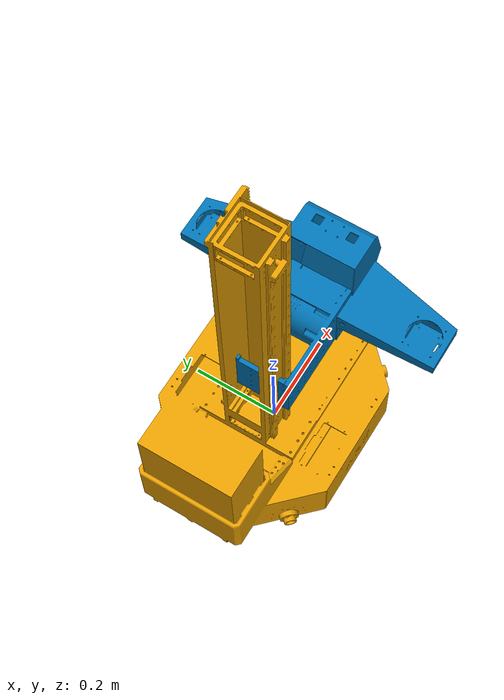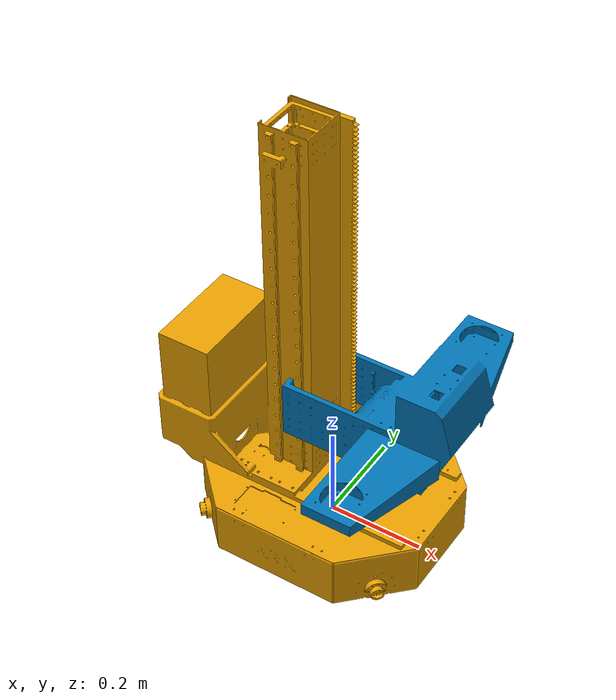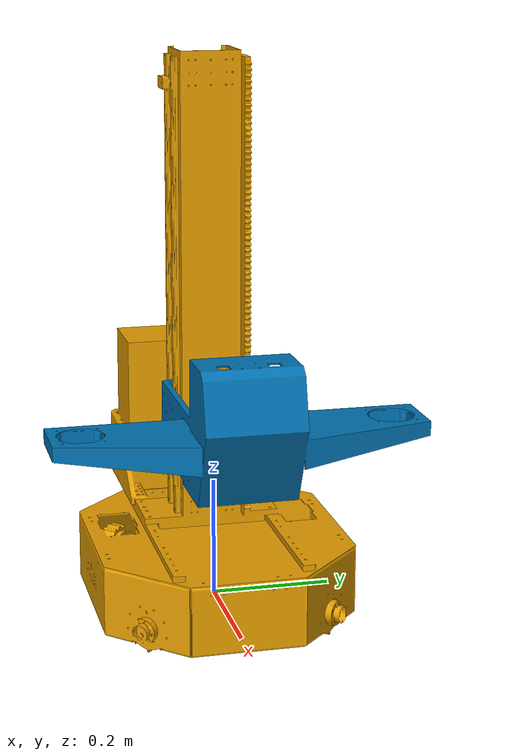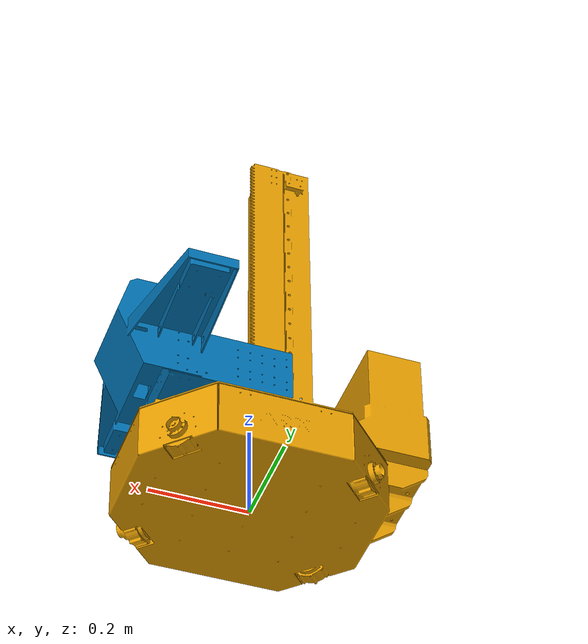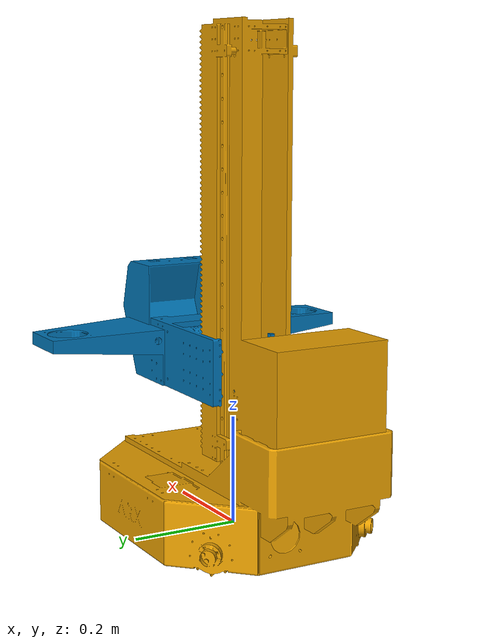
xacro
<?xml version="1.0" ?>
<!-- |    Component visualization for ARX LIFT                                           | -->
<robot name="ARX_Lift" xmlns:xacro="http://www.ros.org/wiki/xacro">
	<xacro:property name="PI" value="3.1415926535897931"/>
	<xacro:arg name="type" default="base"/>

	<xacro:if value="${'$(arg type)' == 'base'}">
		<!-- Include Chassis -->
		<xacro:include filename="$(find arx_lift_description)/xacro/components/mobile_base.xacro"/>
		<xacro:MobileBase/>

		<xacro:include filename="$(find arx_lift_description)/xacro/components/body.xacro"/>
		<xacro:Body/>
	</xacro:if>

	<xacro:if value="${'$(arg type)' == 'wheel'}">
		<!-- Include Wheel -->
		<xacro:include filename="$(find component_models)/xacro/angellun_160.xacro"/>
		<xacro:wheel wheel_name="wheel" enable_passive_wheels="true"/>
	</xacro:if>
</robot>

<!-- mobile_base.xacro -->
<robot xmlns:xacro="http://www.ros.org/wiki/xacro">
  <!-- 包含轮子模块 -->
  <xacro:include filename="$(find component_models)/xacro/angellun_160.xacro"/>

  <xacro:property name="PI" value="3.1415926535897931"/>
  <xacro:macro name="MobileBase" params="enable_wheel_joints:='true'">

    <link name="base_link">
      <inertial>
        <origin xyz="0.015300075250394498 -0.0039712791148939055 0.21685783167580347"/>
        <mass value="67.7696558151508"/>
        <inertia ixx="7.900786" ixy="-0.021075" ixz="0.25289" iyy="8.068966" iyz="0.12408" izz="2.254894"/>
      </inertial>
      <visual>
        <geometry>
          <mesh filename="file://$(find arx_lift_description)/meshes/base/base_link.obj"/>
        </geometry>
      </visual>
      <collision>
        <geometry>
          <mesh filename="file://$(find arx_lift_description)/meshes/base/base_link.obj"/>
        </geometry>
      </collision>
    </link>

    <!-- 根据enable_wheel_joints参数决定使用轮子宏还是空link -->
    <xacro:if value="${enable_wheel_joints}">
      <!-- 启用轮子关节时：使用空link -->
      <link name="wheel_1"/>
      <link name="wheel_2"/>
      <link name="wheel_3"/>
    </xacro:if>
    <xacro:unless value="${enable_wheel_joints}">
      <!-- 不启用轮子关节时：使用轮子宏创建完整的轮子link（不包含被动轮） -->
      <xacro:wheel wheel_name="wheel_1" enable_passive_wheels="false"/>
      <xacro:wheel wheel_name="wheel_2" enable_passive_wheels="false"/>
      <xacro:wheel wheel_name="wheel_3" enable_passive_wheels="false"/>
    </xacro:unless>

    <!-- 根据参数设置关节类型 -->
    <xacro:property name="wheel_joint_type" value="fixed"/>
    <xacro:if value="${enable_wheel_joints}">
      <xacro:property name="wheel_joint_type" value="continuous"/>
    </xacro:if>

    <!-- 轮子关节定义 -->
    <joint name="wheel1_joint" type="${wheel_joint_type}">
      <origin xyz="0.182349 0.315838 0.03" rpy="0.0 0.0 ${-2*PI/3}"/>
      <parent link="base_link"/>
      <child link="wheel_1"/>
      <xacro:if value="${enable_wheel_joints}">
        <axis xyz="1 0 0"/>
      </xacro:if>
    </joint>

    <joint name="wheel2_joint" type="${wheel_joint_type}">
      <origin xyz="0.182349 -0.315838 0.03" rpy="0.0 0.0 ${2*PI/3}"/>
      <parent link="base_link"/>
      <child link="wheel_2"/>
      <xacro:if value="${enable_wheel_joints}">
        <axis xyz="1 0 0"/>
      </xacro:if>
    </joint>

    <joint name="wheel3_joint" type="${wheel_joint_type}">
      <origin xyz="-0.364699 0.0 0.03"/>
      <parent link="base_link"/>
      <child link="wheel_3"/>
      <xacro:if value="${enable_wheel_joints}">
        <axis xyz="1 0 0"/>
      </xacro:if>
    </joint>
  </xacro:macro>
</robot>

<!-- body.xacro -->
<robot xmlns:xacro="http://www.ros.org/wiki/xacro">
    <!-- 仅升降柱；头见 head.xacro（须在双臂之后展开，以匹配 WBC 关节序 lift|L|R|head） -->
    <xacro:macro name="Body">

        <link name="lift_link">
            <inertial>
                <origin xyz="0.13956899916103924 0 0.07323798891482189"/>
                <mass value="17.38744536890084"/>
                <inertia ixx="0.187458" ixy="-0.000206" ixz="0.023942" iyy="0.178157" iyz="-0.000153" izz="0.29708"/>
            </inertial>
            <visual>
                <geometry>
                    <mesh filename="file://$(find arx_lift_description)/meshes/body/lift.obj"/>
                </geometry>
            </visual>
            <collision>
                <geometry>
                    <mesh filename="file://$(find arx_lift_description)/meshes/body/lift.obj"/>
                </geometry>
            </collision>
        </link>

        <joint name="lift_joint" type="prismatic">
            <origin xyz="-0.032 0 0.233"/>
            <parent link="base_link"/>
            <child link="lift_link"/>
            <axis xyz="0.0 0.0 1.0"/>
            <limit effort="1000" lower="0.0" upper="0.86" velocity="100"/>
        </joint>

    </xacro:macro>
</robot>
